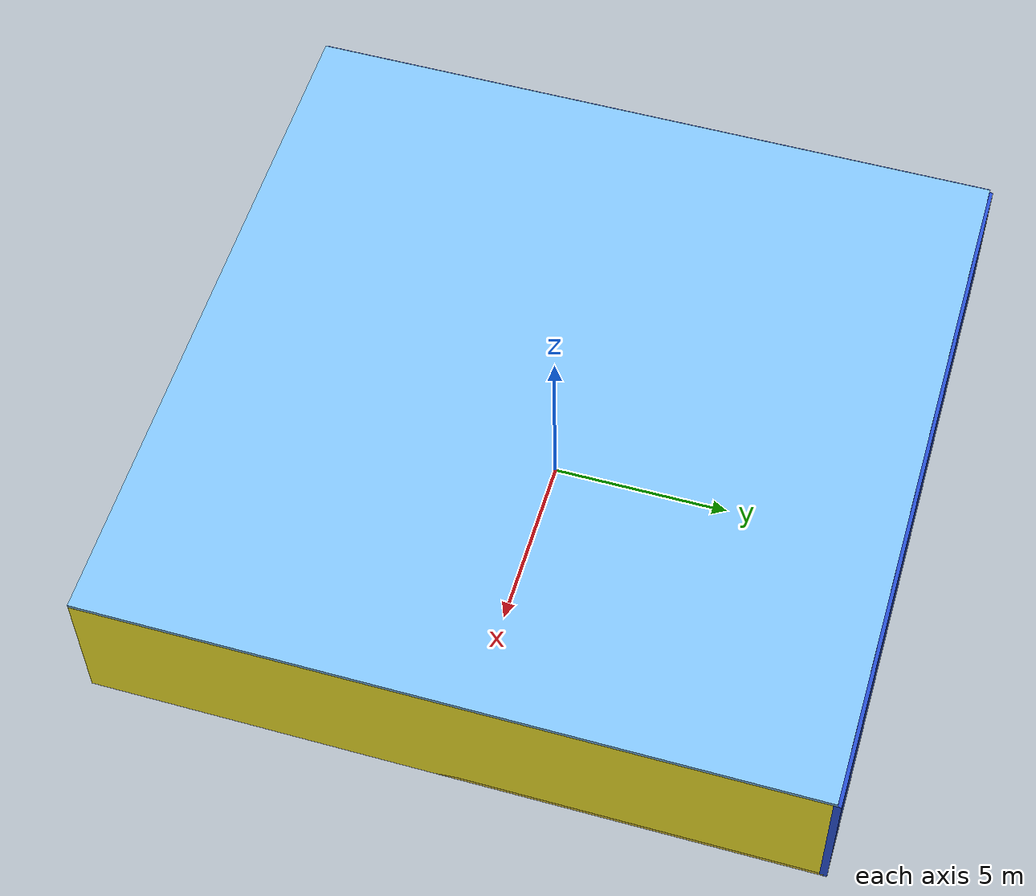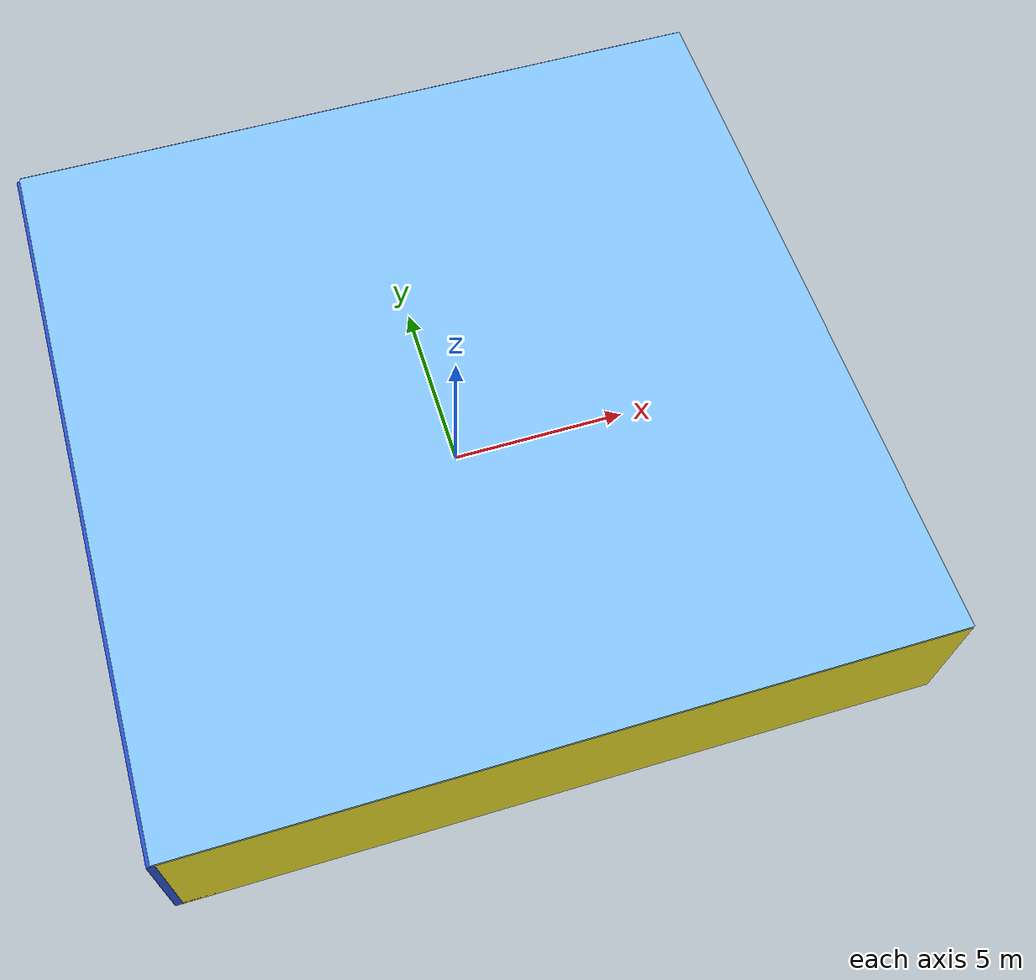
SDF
<sdf version="1.4">
 <world name="default">
  <physics type="ode">
   <max_step_size>0.001</max_step_size>
   <real_time_factor>1</real_time_factor>
   <real_time_update_rate>1000</real_time_update_rate>
   <gravity>0 0 -9.8</gravity>
  </physics>
  <scene><ambient>0.4 0.4 0.4 1</ambient><background>0.7 0.7 0.7 1</background><shadows>1</shadows></scene>
  <model name="Surrounding">
   <static>1</static>
   <link name="Ceiling">
    <collision name="Ceiling_Collision"><geometry><box><size>20 20 0.1</size></box></geometry></collision>
    <visual name="Ceiling_Visual">
     <geometry><box><size>20 20 0.1</size></box></geometry>
     <material>
      <script><uri>file://media/materials/scripts/gazebo.material</uri><name>Gazebo/SkyBlue</name></script>
     </material>
    </visual>
    <pose>0 0 4.05 0 0 0</pose>
   </link>
   <link name="Wall_South">
    <collision name="Wall_South_Collision">
     <geometry><box><size>20 0 4</size></box></geometry>
     <pose>0 0 2 0 -0 0</pose>
    </collision>
    <visual name="Wall_South_Visual">
     <pose>0 0 2 0 -0 0</pose>
     <geometry><box><size>20 0 4</size></box></geometry>
     <material>
      <script><uri>file://media/materials/scripts/gazebo.material</uri><name>Gazebo/Yellow</name></script>
     </material>
    </visual>
    <velocity_decay><linear>0</linear><angular>0</angular></velocity_decay>
    <pose>0 -10 0 0 -0 0</pose>
   </link>
   <link name="Wall_East">
    <collision name="Wall_21_Collision">
     <geometry><box><size>20 0 4</size></box></geometry>
     <pose>0 0 2 0 -0 0</pose>
    </collision>
    <visual name="Wall_21_Visual">
     <pose>0 0 2 0 -0 0</pose>
     <geometry><box><size>20 0 4</size></box></geometry>
     <material>
      <script><uri>file://media/materials/scripts/gazebo.material</uri><name>Gazebo/YellowGlow</name></script>
     </material>
    </visual>
    <velocity_decay><linear>0</linear><angular>0</angular></velocity_decay>
    <pose>10 0 0 0 -0 1.5708</pose>
   </link>
   <link name="Wall_North">
    <collision name="Wall_22_Collision">
     <geometry><box><size>20 0.2 4</size></box></geometry>
     <pose>0 0 2 0 -0 0</pose>
    </collision>
    <visual name="Wall_22_Visual">
     <pose>0 0 2 0 -0 0</pose>
     <geometry><box><size>20 0.2 4</size></box></geometry>
     <material>
      <script><uri>file://media/materials/scripts/gazebo.material</uri><name>Gazebo/BlueGlow</name></script>
     </material>
    </visual>
    <velocity_decay><linear>0</linear><angular>0</angular></velocity_decay>
    <pose>0 10 0 0 -0 0</pose>
   </link>
   <link name="Wall_West">
    <collision name="Wall_23_Collision">
     <geometry><box><size>20 0.2 4</size></box></geometry>
     <pose>0 0 2 0 -0 0</pose>
    </collision>
    <visual name="Wall_23_Visual">
     <pose>0 0 2 0 -0 0</pose>
     <geometry><box><size>20 0.2 4</size></box></geometry>
     <material>
      <script><uri>file://media/materials/scripts/gazebo.material</uri><name>Gazebo/BlueGlow</name></script>
     </material>
    </visual>
    <velocity_decay><linear>0</linear><angular>0</angular></velocity_decay>
    <pose>-10 0 0 0 0 -1.5708</pose>
   </link>
   <link name="Ground_link">
    <collision name="collision">
     <pose>0 0 .05 0 -0 0</pose>
     <geometry><box><size>20 20 0.1</size></box></geometry>
    </collision>
    <visual name="visual">
     <pose>0 0 .05 0 -0 0</pose>
     <geometry><box><size>20 20 0.1</size></box></geometry>
     <material>
      <script><uri>file://media/materials/scripts/gazebo.material</uri><name>Gazebo/ZincYellow</name></script>
     </material>
    </visual>
   </link>
   <static>1</static>
  </model>
  <spherical_coordinates>
   <surface_model>EARTH_WGS84</surface_model>
   <latitude_deg>0</latitude_deg>
   <longitude_deg>0</longitude_deg>
   <elevation>0</elevation>
   <heading_deg>0</heading_deg>
  </spherical_coordinates>
  <light name="lightball_0" type="diffuse">
   <diffuse>0.8 0.8 0.8 1</diffuse>
   <specular>0.2 0.2 0.2 1</specular>
   <attenuation>
    <range>100</range>
    <constant>0.7</constant>
    <linear>0.01</linear>
    <quadratic>0.001</quadratic>
   </attenuation>
   <direction>-0.5 0.1 -0.9</direction>
   <pose>1.07127627165 -4.36368599059 1.96257463452 0 0 0</pose>
  </light>
  <light name="lightball_1" type="diffuse">
   <diffuse>0.8 0.8 0.8 1</diffuse>
   <specular>0.2 0.2 0.2 1</specular>
   <attenuation>
    <range>100</range>
    <constant>0.7</constant>
    <linear>0.01</linear>
    <quadratic>0.001</quadratic>
   </attenuation>
   <direction>-0.5 0.1 -0.9</direction>
   <pose>9.14464389579 8.3708961231 3.08828311647 0 0 0</pose>
  </light>
  <light name="lightball_2" type="diffuse">
   <diffuse>0.8 0.8 0.8 1</diffuse>
   <specular>0.2 0.2 0.2 1</specular>
   <attenuation>
    <range>100</range>
    <constant>0.7</constant>
    <linear>0.01</linear>
    <quadratic>0.001</quadratic>
   </attenuation>
   <direction>-0.5 0.1 -0.9</direction>
   <pose>2.52142963497 3.99340428972 0.909768796206 0 0 0</pose>
  </light>
  <light name="lightball_3" type="diffuse">
   <diffuse>0.8 0.8 0.8 1</diffuse>
   <specular>0.2 0.2 0.2 1</specular>
   <attenuation>
    <range>100</range>
    <constant>0.7</constant>
    <linear>0.01</linear>
    <quadratic>0.001</quadratic>
   </attenuation>
   <direction>-0.5 0.1 -0.9</direction>
   <pose>-1.16069636957 3.36124559398 1.8938500237 0 0 0</pose>
  </light>
  <light name="lightball_4" type="diffuse">
   <diffuse>0.8 0.8 0.8 1</diffuse>
   <specular>0.2 0.2 0.2 1</specular>
   <attenuation>
    <range>100</range>
    <constant>0.7</constant>
    <linear>0.01</linear>
    <quadratic>0.001</quadratic>
   </attenuation>
   <direction>-0.5 0.1 -0.9</direction>
   <pose>7.55845444424 1.67166599692 2.99861007043 0 0 0</pose>
  </light>
  <include><uri>model://cabinet</uri><pose>-4.86768629581 -7.92620454291 0 0 0 2.68147428159</pose></include>
  <include>
   <uri>model://robocup_3Dsim_goal</uri>
   <pose>-5.23883899844 -4.40264092034 0 0 0 1.62493373631</pose>
  </include>
  <include>
   <uri>model://robocup_3Dsim_goal</uri>
   <pose>1.26188955408 -6.59096048085 0 0 0 2.80000321207</pose>
  </include>
  <include><uri>model://cabinet</uri><pose>4.31738151212 1.49978176461 0 0 0 1.35879439083</pose></include>
  <include>
   <uri>model://textured_shapes</uri>
   <pose>7.05007541877 -1.08899956964 0 0 0 0.874190083807</pose>
  </include>
 </world>
</sdf>

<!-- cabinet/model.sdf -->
<sdf version="1.5">
  <model name="cabinet">
    <static>true</static>
    <link name="cabinet_bottom_plate">
      <inertial>
        <pose>0 0 -1 0 0 0</pose>
        <inertia>
          <ixx>2.050000</ixx>
          <ixy>0</ixy>
          <ixz>0</ixz>
          <iyy>2.050000</iyy>
          <iyz>0</iyz>
          <izz>2.050000</izz>
        </inertia>
        <mass>25.000000</mass>
      </inertial>
      <collision name="cabinet_bottom_plate_geom">
        <pose>0 0 0.010000 0 0 0</pose>
        <geometry>
          <box>
            <size>0.450000 0.450000 0.020000</size>
          </box>
        </geometry>
      </collision>
      <visual name="cabinet_bottom_plate_geom_visual">
        <pose>0 0 0.010000 0 0 0</pose>
        <geometry>
          <box>
            <size>0.450000 0.450000 0.020000</size>
          </box>
        </geometry>
        <material>
          <script>
            <uri>model://media/materials/scripts/gazebo.material</uri>
            <name>Gazebo/Wood</name>
          </script>
        </material>
      </visual>
      <collision name="cabinet_bottom_plate_geom_cabinet_back_plate">
        <pose>0.235000 0 0.510000 0 0 0</pose>
        <geometry>
          <box>
            <size>0.020000 0.450000 1.020000</size>
          </box>
        </geometry>
      </collision>
      <visual name="cabinet_bottom_plate_geom_cabinet_back_plate_visual">
        <pose>0.235000 0 0.510000 0 0 0</pose>
        <geometry>
          <box>
            <size>0.020000 0.450000 1.020000</size>
          </box>
        </geometry>
        <material>
          <script>
            <uri>model://media/materials/scripts/gazebo.material</uri>
            <name>Gazebo/Wood</name>
          </script>
        </material>
      </visual>
      <collision name="cabinet_bottom_plate_geom_cabinet_left_plate">
        <pose>0 0.235000 0.510000 0 0 0</pose>
        <geometry>
          <box>
            <size>0.450000 0.020000 1.020000</size>
          </box>
        </geometry>
      </collision>
      <visual name="cabinet_bottom_plate_geom_cabinet_left_plate_visual">
        <pose>0 0.235000 0.510000 0 0 0</pose>
        <geometry>
          <box>
            <size>0.450000 0.020000 1.020000</size>
          </box>
        </geometry>
        <material>
          <script>
            <uri>model://media/materials/scripts/gazebo.material</uri>
            <name>Gazebo/Wood</name>
          </script>
        </material>
      </visual>
      <collision name="cabinet_bottom_plate_geom_cabinet_middle_plate">
        <pose>0 0 0.510000 0 0 0</pose>
        <geometry>
          <box>
            <size>0.450000 0.450000 0.020000</size>
          </box>
        </geometry>
      </collision>
      <visual name="cabinet_bottom_plate_geom_cabinet_middle_plate_visual">
        <pose>0 0 0.510000 0 0 0</pose>
        <geometry>
          <box>
            <size>0.450000 0.450000 0.020000</size>
          </box>
        </geometry>
        <material>
          <script>
            <uri>model://media/materials/scripts/gazebo.material</uri>
            <name>Gazebo/Wood</name>
          </script>
        </material>
      </visual>
      <collision name="cabinet_bottom_plate_geom_cabinet_right_plate">
        <pose>0 -0.235000 0.510000 0 0 0</pose>
        <geometry>
          <box>
            <size>0.450000 0.020000 1.020000</size>
          </box>
        </geometry>
      </collision>
      <visual name="cabinet_bottom_plate_geom_cabinet_right_plate_visual">
        <pose>0 -0.235000 0.510000 0 0 0</pose>
        <geometry>
          <box>
            <size>0.450000 0.020000 1.020000</size>
          </box>
        </geometry>
        <material>
          <script>
            <uri>model://media/materials/scripts/gazebo.material</uri>
            <name>Gazebo/Wood</name>
          </script>
        </material>
      </visual>
      <collision name="cabinet_bottom_plate_geom_cabinet_top_plate">
        <pose>0 0 1.010000 0 0 0</pose>
        <geometry>
          <box>
            <size>0.450000 0.450000 0.020000</size>
          </box>
        </geometry>
      </collision>
      <visual name="cabinet_bottom_plate_geom_cabinet_top_plate_visual">
        <pose>0 0 1.010000 0 0 0</pose>
        <geometry>
          <box>
            <size>0.450000 0.450000 0.020000</size>
          </box>
        </geometry>
        <material>
          <script>
            <uri>model://media/materials/scripts/gazebo.material</uri>
            <name>Gazebo/Wood</name>
          </script>
        </material>
      </visual>
    </link>
  </model>
</sdf>

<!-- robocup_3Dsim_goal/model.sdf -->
<sdf version="1.5">
  <model name="robocup_3d_goal">
    <static>true</static>
    <link name="left_post">
      <pose>0 1.05 0.45 0 0 0</pose>
      <collision name="collision">
        <geometry>
          <cylinder>
            <radius>0.05</radius>
            <length>0.9</length>
          </cylinder>
        </geometry>
      </collision>
      <visual name="visual">
        <geometry>
          <cylinder>
            <radius>0.05</radius>
            <length>0.9</length>
          </cylinder>
        </geometry>
        <material>
          <script>
            <uri>file://media/materials/scripts/gazebo.material</uri>
            <name>Gazebo/ZincYellow</name>
          </script>
        </material>
      </visual>
    </link>
    <link name="left_support_horiz_lower">
      <pose>0.30 1.05 0.01 0 0 0</pose>
      <collision name="collision">
        <geometry>
          <box>
            <size>0.50 0.02 0.02</size>
          </box>
        </geometry>
      </collision>
      <visual name="visual">
        <geometry>
          <box>
            <size>0.50 0.02 0.02</size>
          </box>
        </geometry>
        <material>
          <script>
            <uri>file://media/materials/scripts/gazebo.material</uri>
            <name>Gazebo/White</name>
          </script>
        </material>
      </visual>
    </link>
    <link name="left_support_horiz_upper">
      <pose>0.30 1.05 0.79 0 0 0</pose>
      <collision name="collision">
        <geometry>
          <box>
            <size>0.50 0.02 0.02</size>
          </box>
        </geometry>
      </collision>
      <visual name="visual">
        <geometry>
          <box>
            <size>0.50 0.02 0.02</size>
          </box>
        </geometry>
        <material>
          <script>
            <uri>file://media/materials/scripts/gazebo.material</uri>
            <name>Gazebo/White</name>
          </script>
        </material>
      </visual>
    </link>
    <link name="left_support_vertical">
      <pose>0.56 1.05 0.4 0 1.5708 0</pose>
      <collision name="collision">
        <geometry>
          <box>
            <size>0.80 0.02 0.02</size>
          </box>
        </geometry>
      </collision>
      <visual name="visual">
        <geometry>
          <box>
            <size>0.80 0.02 0.02</size>
          </box>
        </geometry>
        <material>
          <script>
            <uri>file://media/materials/scripts/gazebo.material</uri>
            <name>Gazebo/White</name>
          </script>
        </material>
      </visual>
    </link>
    <link name="right_support_horiz_lower">
      <pose>0.30 -1.05 0.01 0 0 0</pose>
      <collision name="collision">
        <geometry>
          <box>
            <size>0.50 0.02 0.02</size>
          </box>
        </geometry>
      </collision>
      <visual name="visual">
        <geometry>
          <box>
            <size>0.50 0.02 0.02</size>
          </box>
        </geometry>
        <material>
          <script>
            <uri>file://media/materials/scripts/gazebo.material</uri>
            <name>Gazebo/White</name>
          </script>
        </material>
      </visual>
    </link>
    <link name="right_support_horiz_upper">
      <pose>0.30 -1.05 0.79 0 0 0</pose>
      <collision name="collision">
        <geometry>
          <box>
            <size>0.50 0.02 0.02</size>
          </box>
        </geometry>
      </collision>
      <visual name="visual">
        <geometry>
          <box>
            <size>0.50 0.02 0.02</size>
          </box>
        </geometry>
        <material>
          <script>
            <uri>file://media/materials/scripts/gazebo.material</uri>
            <name>Gazebo/White</name>
          </script>
        </material>
      </visual>
    </link>
    <link name="right_support_vertical">
      <pose>0.56 -1.05 0.4 0 1.5708 0</pose>
      <collision name="collision">
        <geometry>
          <box>
            <size>0.80 0.02 0.02</size>
          </box>
        </geometry>
      </collision>
      <visual name="visual">
        <geometry>
          <box>
            <size>0.80 0.02 0.02</size>
          </box>
        </geometry>
        <material>
          <script>
            <uri>file://media/materials/scripts/gazebo.material</uri>
            <name>Gazebo/White</name>
          </script>
        </material>
      </visual>
    </link>
    <link name="center_support_horiz_lower">
      <pose>0.56 0 0.01 0 1.5708 0</pose>
      <collision name="collision">
        <geometry>
          <box>
            <size>0.02 2.08 0.02</size>
          </box>
        </geometry>
      </collision>
      <visual name="visual">
        <geometry>
          <box>
            <size>0.02 2.08 0.02</size>
          </box>
        </geometry>
        <material>
          <script>
            <uri>file://media/materials/scripts/gazebo.material</uri>
            <name>Gazebo/White</name>
          </script>
        </material>
      </visual>
    </link>
    <link name="center_support_horiz_upper">
      <pose>0.56 0 0.79 0 1.5708 0</pose>
      <collision name="collision">
        <geometry>
          <box>
            <size>0.02 2.08 0.02</size>
          </box>
        </geometry>
      </collision>
      <visual name="visual">
        <geometry>
          <box>
            <size>0.02 2.08 0.02</size>
          </box>
        </geometry>
        <material>
          <script>
            <uri>file://media/materials/scripts/gazebo.material</uri>
            <name>Gazebo/White</name>
          </script>
        </material>
      </visual>
    </link>
    <link name="right_post">
      <pose>0 -1.05 0.45 0 0 0</pose>
      <collision name="collision">
        <geometry>
          <cylinder>
            <radius>0.05</radius>
            <length>0.9</length>
          </cylinder>
        </geometry>
      </collision>
      <visual name="visual">
        <geometry>
          <cylinder>
            <radius>0.05</radius>
            <length>0.9</length>
          </cylinder>
        </geometry>
        <material>
          <script>
            <uri>file://media/materials/scripts/gazebo.material</uri>
            <name>Gazebo/ZincYellow</name>
          </script>
        </material>
      </visual>
    </link>
    <link name="crossbar">
      <pose>0 0 0.85 1.57 1.57 0</pose>
      <collision name="collision">
        <geometry>
          <cylinder>
            <radius>0.05</radius>
            <length>2.0</length>
          </cylinder>
        </geometry>
      </collision>
      <visual name="visual">
        <geometry>
          <cylinder>
            <radius>0.05</radius>
            <length>2.0</length>
          </cylinder>
        </geometry>
        <material>
          <script>
            <uri>file://media/materials/scripts/gazebo.material</uri>
            <name>Gazebo/ZincYellow</name>
          </script>
        </material>
      </visual>
    </link>
    <link name="center_net">
      <pose>0.56 0 0.40 0 0 0</pose>
      <collision name="collision">
        <geometry>
          <box>
            <size>0.01 2.1 0.80</size>
          </box>
        </geometry>
      </collision>
      <visual name="visual">
        <geometry>
          <box>
            <size>0.01 2.1 0.80</size>
          </box>
        </geometry>
        <material>
          <script>
            <uri>model://../model_source/models/robocup09_spl_field/materials/scripts/</uri>
            <uri>model://../model_source/models/robocup09_spl_field/materials/textures/</uri>
            <name>RoboCup/Net</name>
          </script>
        </material>
      </visual>
    </link>
    <link name="left_net">
      <pose>0.30 1.05 0.40 0 0 0</pose>
      <collision name="collision">
        <geometry>
          <box>
            <size>0.50 0.01 0.76</size>
          </box>
        </geometry>
      </collision>
      <visual name="visual">
        <geometry>
          <box>
            <size>0.50 0.01 0.76</size>
          </box>
        </geometry>
        <material>
          <script>
            <uri>model://../model_source/models/robocup09_spl_field/materials/scripts/</uri>
            <uri>model://../model_source/models/robocup09_spl_field/materials/textures/</uri>
            <name>RoboCup/Net</name>
          </script>
        </material>
      </visual>
    </link>
    <link name="right_net">
      <pose>0.30 -1.05 0.40 0 0 0</pose>
      <collision name="collision">
        <geometry>
          <box>
            <size>0.50 0.01 0.76</size>
          </box>
        </geometry>
      </collision>
      <visual name="visual">
        <geometry>
          <box>
            <size>0.50 0.01 0.76</size>
          </box>
        </geometry>
        <material>
          <script>
            <uri>model://../model_source/models/robocup09_spl_field/materials/scripts/</uri>
            <uri>model://../model_source/models/robocup09_spl_field/materials/textures/</uri>
            <name>RoboCup/Net</name>
          </script>
        </material>
      </visual>
    </link>
  </model>
</sdf>

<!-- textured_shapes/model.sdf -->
<sdf version="1.6">
  <model name="textured_shapes">
    <pose>0 0 0.5 0 0 0</pose>
    <link name="box">
      <pose>0 -1.5 0 0 0 0</pose>
      <collision name="collision">
        <geometry>
          <box>
            <size>1 1 1</size>
          </box>
        </geometry>
      </collision>
      <visual name="visual">
        <geometry>
          <box>
            <size>1 1 1</size>
          </box>
        </geometry>
        <material>
          <script>
            <uri>model://../model_source/models/textured_shapes/materials/scripts</uri>
            <uri>model://../model_source/models/textured_shapes/materials/textures</uri>
            <name>TexturedShape/Squares</name>
          </script>
        </material>
      </visual>
    </link>
    <link name="sphere">
      <collision name="collision">
        <geometry>
          <sphere>
            <radius>0.5</radius>
          </sphere>
        </geometry>
      </collision>
      <visual name="visual">
        <geometry>
          <sphere>
            <radius>0.5</radius>
          </sphere>
        </geometry>
        <material>
          <script>
            <uri>model://../model_source/models/textured_shapes/materials/scripts</uri>
            <uri>model://../model_source/models/textured_shapes/materials/textures</uri>
            <name>TexturedShape/Squares</name>
          </script>
        </material>
      </visual>
    </link>
    <link name="cylinder">
      <pose>0 1.5 0 0 0 0</pose>
      <collision name="collision">
        <geometry>
          <cylinder>
            <radius>0.5</radius>
            <length>1</length>
          </cylinder>
        </geometry>
      </collision>
      <visual name="visual">
        <geometry>
          <cylinder>
            <radius>0.5</radius>
            <length>1</length>
          </cylinder>
        </geometry>
        <material>
          <script>
            <uri>model://../model_source/models/textured_shapes/materials/scripts</uri>
            <uri>model://../model_source/models/textured_shapes/materials/textures</uri>
            <name>TexturedShape/Squares</name>
          </script>
        </material>
      </visual>
    </link>
  </model>
</sdf>
